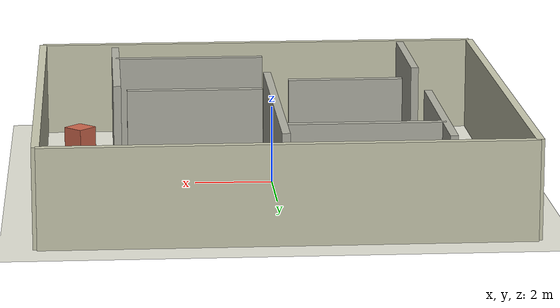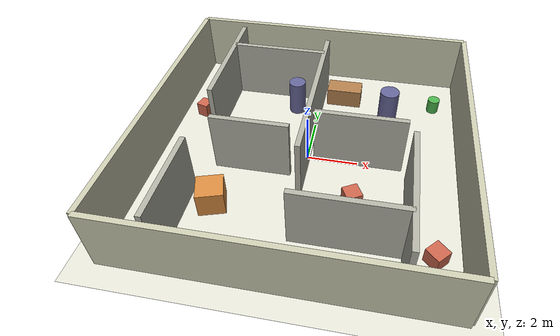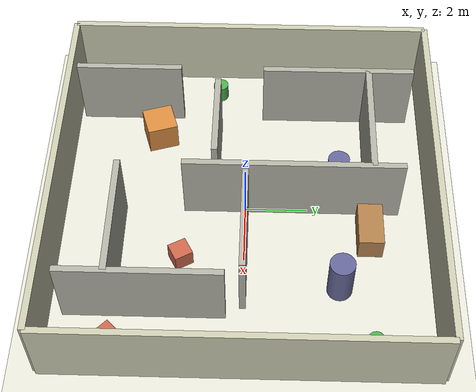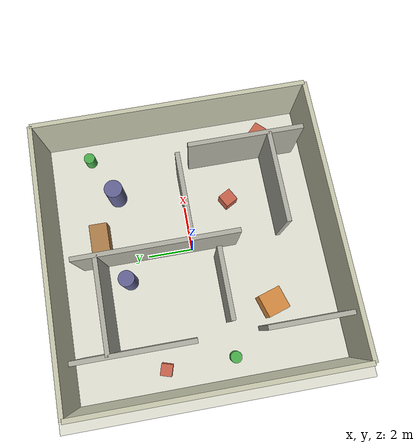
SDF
<?xml version="1.0" ?>
<sdf version="1.6">
  <world name="simple_room">

    <physics name="1ms" type="ode">
      <max_step_size>0.001</max_step_size>
      <real_time_update_rate>1000</real_time_update_rate>
      <real_time_factor>1.0</real_time_factor>
    </physics>

    <!-- Plugin cho Ignition Fortress -->
    <plugin filename="ignition-gazebo-physics-system"
            name="ignition::gazebo::systems::Physics"/>
    <plugin filename="ignition-gazebo-user-commands-system"
            name="ignition::gazebo::systems::UserCommands"/>
    <plugin filename="ignition-gazebo-scene-broadcaster-system"
            name="ignition::gazebo::systems::SceneBroadcaster"/>
    <plugin filename="ignition-gazebo-contact-system"
            name="ignition::gazebo::systems::Contact"/>
    <plugin filename="ignition-gazebo-sensors-system"
            name="ignition::gazebo::systems::Sensors">
      <render_engine>ogre2</render_engine>
    </plugin>

    <!-- Ánh sáng chính -->
    <light type="directional" name="sun">
      <cast_shadows>true</cast_shadows>
      <pose>0 0 10 0 0 0</pose>
      <diffuse>0.8 0.8 0.8 1</diffuse>
      <specular>0.2 0.2 0.2 1</specular>
      <attenuation>
        <range>1000</range>
        <constant>0.9</constant>
        <linear>0.01</linear>
        <quadratic>0.001</quadratic>
      </attenuation>
      <direction>-0.5 0.1 -0.9</direction>
    </light>

    <!-- Ánh sáng phụ -->
    <light type="point" name="ceiling_light_1">
      <pose>-3 3 3 0 0 0</pose>
      <diffuse>0.9 0.9 0.9 1</diffuse>
      <specular>0.5 0.5 0.5 1</specular>
      <attenuation>
        <range>20</range>
        <constant>0.5</constant>
        <linear>0.01</linear>
        <quadratic>0.001</quadratic>
      </attenuation>
    </light>

    <light type="point" name="ceiling_light_2">
      <pose>3 -3 3 0 0 0</pose>
      <diffuse>0.9 0.9 0.9 1</diffuse>
      <specular>0.5 0.5 0.5 1</specular>
      <attenuation>
        <range>20</range>
        <constant>0.5</constant>
        <linear>0.01</linear>
        <quadratic>0.001</quadratic>
      </attenuation>
    </light>

        <!-- Nền nhà -->
    <model name="ground_plane">
      <static>true</static>
      <link name="link">
        <collision name="collision">
          <geometry>
            <plane>
              <normal>0 0 1</normal>
            </plane>
          </geometry>
          <surface>
            <friction>
              <ode>
                <mu>100</mu>
                <mu2>100</mu2>
              </ode>
            </friction>
          </surface>
        </collision>
        <visual name="visual">
          <geometry>
            <plane>
              <normal>0 0 1</normal>
              <size>100 100</size>
            </plane>
          </geometry>
          <material>
            <ambient>0.85 0.85 0.8 1</ambient>
            <diffuse>0.9 0.9 0.85 1</diffuse>
            <specular>0.1 0.1 0.1 1</specular>
          </material>
        </visual>
      </link>
    </model>

    <!-- ============ TƯỜNG NGOÀI PHÒNG ============ -->

    <!-- Tường trên -->
    <model name="outer_wall_top">
      <pose>0 6 1.25 0 0 0</pose>
      <static>true</static>
      <link name="link">
        <collision name="collision">
          <geometry>
            <box>
              <size>12 0.2 2.5</size>
            </box>
          </geometry>
        </collision>
        <visual name="visual">
          <geometry>
            <box>
              <size>12 0.2 2.5</size>
            </box>
          </geometry>
          <material>
            <ambient>0.7 0.7 0.6 1</ambient>
            <diffuse>0.8 0.8 0.7 1</diffuse>
          </material>
        </visual>
      </link>
    </model>

    <!-- Tường dưới -->
    <model name="outer_wall_bottom">
      <pose>0 -6 1.25 0 0 0</pose>
      <static>true</static>
      <link name="link">
        <collision name="collision">
          <geometry>
            <box>
              <size>12 0.2 2.5</size>
            </box>
          </geometry>
        </collision>
        <visual name="visual">
          <geometry>
            <box>
              <size>12 0.2 2.5</size>
            </box>
          </geometry>
          <material>
            <ambient>0.7 0.7 0.6 1</ambient>
            <diffuse>0.8 0.8 0.7 1</diffuse>
          </material>
        </visual>
      </link>
    </model>

    <!-- Tường trái -->
    <model name="outer_wall_left">
      <pose>-6 0 1.25 0 0 0</pose>
      <static>true</static>
      <link name="link">
        <collision name="collision">
          <geometry>
            <box>
              <size>0.2 12 2.5</size>
            </box>
          </geometry>
        </collision>
        <visual name="visual">
          <geometry>
            <box>
              <size>0.2 12 2.5</size>
            </box>
          </geometry>
          <material>
            <ambient>0.7 0.7 0.6 1</ambient>
            <diffuse>0.8 0.8 0.7 1</diffuse>
          </material>
        </visual>
      </link>
    </model>

    <!-- Tường phải -->
    <model name="outer_wall_right">
      <pose>6 0 1.25 0 0 0</pose>
      <static>true</static>
      <link name="link">
        <collision name="collision">
          <geometry>
            <box>
              <size>0.2 12 2.5</size>
            </box>
          </geometry>
        </collision>
        <visual name="visual">
          <geometry>
            <box>
              <size>0.2 12 2.5</size>
            </box>
          </geometry>
          <material>
            <ambient>0.7 0.7 0.6 1</ambient>
            <diffuse>0.8 0.8 0.7 1</diffuse>
          </material>
        </visual>
      </link>
    </model>

    <!-- ============ CHƯỚNG NGẠI VẬT TẠO MÊ CUNG ============ -->

    <!-- Tường ngăn dọc 1 - Bên trái trên -->
    <model name="maze_wall_1">
      <pose>-4 3 1.25 0 0 0</pose>
      <static>true</static>
      <link name="link">
        <collision name="collision">
          <geometry>
            <box>
              <size>0.2 5 2.5</size>
            </box>
          </geometry>
        </collision>
        <visual name="visual">
          <geometry>
            <box>
              <size>0.2 5 2.5</size>
            </box>
          </geometry>
          <material>
            <ambient>0.6 0.6 0.55 1</ambient>
            <diffuse>0.7 0.7 0.65 1</diffuse>
          </material>
        </visual>
      </link>
    </model>

    <!-- Tường ngăn dọc 2 - Giữa -->
    <model name="maze_wall_2">
      <pose>0 1.5 1.25 0 0 0</pose>
      <static>true</static>
      <link name="link">
        <collision name="collision">
          <geometry>
            <box>
              <size>0.2 7 2.5</size>
            </box>
          </geometry>
        </collision>
        <visual name="visual">
          <geometry>
            <box>
              <size>0.2 7 2.5</size>
            </box>
          </geometry>
          <material>
            <ambient>0.6 0.6 0.55 1</ambient>
            <diffuse>0.7 0.7 0.65 1</diffuse>
          </material>
        </visual>
      </link>
    </model>

    <!-- Tường ngăn dọc 3 - Bên phải dưới -->
    <model name="maze_wall_3">
      <pose>4 -3 1.25 0 0 0</pose>
      <static>true</static>
      <link name="link">
        <collision name="collision">
          <geometry>
            <box>
              <size>0.2 5 2.5</size>
            </box>
          </geometry>
        </collision>
        <visual name="visual">
          <geometry>
            <box>
              <size>0.2 5 2.5</size>
            </box>
          </geometry>
          <material>
            <ambient>0.6 0.6 0.55 1</ambient>
            <diffuse>0.7 0.7 0.65 1</diffuse>
          </material>
        </visual>
      </link>
    </model>

    <!-- Tường ngang 1 - Trên trái -->
    <model name="maze_wall_4">
      <pose>-2 4 1.25 0 0 0</pose>
      <static>true</static>
      <link name="link">
        <collision name="collision">
          <geometry>
            <box>
              <size>4 0.2 2.5</size>
            </box>
          </geometry>
        </collision>
        <visual name="visual">
          <geometry>
            <box>
              <size>4 0.2 2.5</size>
            </box>
          </geometry>
          <material>
            <ambient>0.6 0.6 0.55 1</ambient>
            <diffuse>0.7 0.7 0.65 1</diffuse>
          </material>
        </visual>
      </link>
    </model>

    <!-- Tường ngang 2 - Giữa -->
    <model name="maze_wall_5">
      <pose>2 0 1.25 0 0 0</pose>
      <static>true</static>
      <link name="link">
        <collision name="collision">
          <geometry>
            <box>
              <size>3.5 0.2 2.5</size>
            </box>
          </geometry>
        </collision>
        <visual name="visual">
          <geometry>
            <box>
              <size>3.5 0.2 2.5</size>
            </box>
          </geometry>
          <material>
            <ambient>0.6 0.6 0.55 1</ambient>
            <diffuse>0.7 0.7 0.65 1</diffuse>
          </material>
        </visual>
      </link>
    </model>

    <!-- Tường ngang 3 - Dưới phải -->
    <model name="maze_wall_6">
      <pose>2 -4 1.25 0 0 0</pose>
      <static>true</static>
      <link name="link">
        <collision name="collision">
          <geometry>
            <box>
              <size>4 0.2 2.5</size>
            </box>
          </geometry>
        </collision>
        <visual name="visual">
          <geometry>
            <box>
              <size>4 0.2 2.5</size>
            </box>
          </geometry>
          <material>
            <ambient>0.6 0.6 0.55 1</ambient>
            <diffuse>0.7 0.7 0.65 1</diffuse>
          </material>
        </visual>
      </link>
    </model>

    <!-- Tường ngắn tạo góc hẹp 1 -->
    <model name="maze_wall_7">
      <pose>-2 -1 1.25 0 0 0</pose>
      <static>true</static>
      <link name="link">
        <collision name="collision">
          <geometry>
            <box>
              <size>3 0.2 2.5</size>
            </box>
          </geometry>
        </collision>
        <visual name="visual">
          <geometry>
            <box>
              <size>3 0.2 2.5</size>
            </box>
          </geometry>
          <material>
            <ambient>0.6 0.6 0.55 1</ambient>
            <diffuse>0.7 0.7 0.65 1</diffuse>
          </material>
        </visual>
      </link>
    </model>

    <!-- Tường ngắn tạo góc hẹp 2 -->
    <model name="maze_wall_8">
      <pose>-4 -4 1.25 0 0 0</pose>
      <static>true</static>
      <link name="link">
        <collision name="collision">
          <geometry>
            <box>
              <size>0.2 3.5 2.5</size>
            </box>
          </geometry>
        </collision>
        <visual name="visual">
          <geometry>
            <box>
              <size>0.2 3.5 2.5</size>
            </box>
          </geometry>
          <material>
            <ambient>0.6 0.6 0.55 1</ambient>
            <diffuse>0.7 0.7 0.65 1</diffuse>
          </material>
        </visual>
      </link>
    </model>

    <!-- ============ CHƯỚNG NGẠI VẬT NHỎ ============ -->

    <!-- Hộp lớn -->
    <model name="large_box_1">
      <pose>-3 -3 0.5 0 0 0.3</pose>
      <static>true</static>
      <link name="link">
        <collision name="collision">
          <geometry>
            <box>
              <size>1 1 1</size>
            </box>
          </geometry>
        </collision>
        <visual name="visual">
          <geometry>
            <box>
              <size>1 1 1</size>
            </box>
          </geometry>
          <material>
            <ambient>0.8 0.5 0.2 1</ambient>
            <diffuse>0.85 0.55 0.25 1</diffuse>
          </material>
        </visual>
      </link>
    </model>

    <!-- Trụ tròn 1 -->
    <model name="cylinder_1">
      <pose>3 3 0.75 0 0 0</pose>
      <static>true</static>
      <link name="link">
        <collision name="collision">
          <geometry>
            <cylinder>
              <radius>0.4</radius>
              <length>1.5</length>
            </cylinder>
          </geometry>
        </collision>
        <visual name="visual">
          <geometry>
            <cylinder>
              <radius>0.4</radius>
              <length>1.5</length>
            </cylinder>
          </geometry>
          <material>
            <ambient>0.3 0.3 0.5 1</ambient>
            <diffuse>0.4 0.4 0.6 1</diffuse>
          </material>
        </visual>
      </link>
    </model>

    <!-- Trụ tròn 2 -->
    <model name="cylinder_2">
      <pose>-1 3 0.75 0 0 0</pose>
      <static>true</static>
      <link name="link">
        <collision name="collision">
          <geometry>
            <cylinder>
              <radius>0.35</radius>
              <length>1.5</length>
            </cylinder>
          </geometry>
        </collision>
        <visual name="visual">
          <geometry>
            <cylinder>
              <radius>0.35</radius>
              <length>1.5</length>
            </cylinder>
          </geometry>
          <material>
            <ambient>0.3 0.3 0.5 1</ambient>
            <diffuse>0.4 0.4 0.6 1</diffuse>
          </material>
        </visual>
      </link>
    </model>

    <!-- Hộp nhỏ 1 -->
    <model name="small_box_1">
      <pose>2 -2 0.3 0 0 0.5</pose>
      <static>true</static>
      <link name="link">
        <collision name="collision">
          <geometry>
            <box>
              <size>0.6 0.6 0.6</size>
            </box>
          </geometry>
        </collision>
        <visual name="visual">
          <geometry>
            <box>
              <size>0.6 0.6 0.6</size>
            </box>
          </geometry>
          <material>
            <ambient>0.7 0.3 0.2 1</ambient>
            <diffuse>0.8 0.4 0.3 1</diffuse>
          </material>
        </visual>
      </link>
    </model>

    <!-- Hộp nhỏ 2 -->
    <model name="small_box_2">
      <pose>-5 2 0.3 0 0 -0.3</pose>
      <static>true</static>
      <link name="link">
        <collision name="collision">
          <geometry>
            <box>
              <size>0.5 0.5 0.6</size>
            </box>
          </geometry>
        </collision>
        <visual name="visual">
          <geometry>
            <box>
              <size>0.5 0.5 0.6</size>
            </box>
          </geometry>
          <material>
            <ambient>0.7 0.3 0.2 1</ambient>
            <diffuse>0.8 0.4 0.3 1</diffuse>
          </material>
        </visual>
      </link>
    </model>

    <!-- Hộp nhỏ 3 -->
    <model name="small_box_3">
      <pose>5 -4 0.3 0 0 0.8</pose>
      <static>true</static>
      <link name="link">
        <collision name="collision">
          <geometry>
            <box>
              <size>0.6 0.6 0.6</size>
            </box>
          </geometry>
        </collision>
        <visual name="visual">
          <geometry>
            <box>
              <size>0.6 0.6 0.6</size>
            </box>
          </geometry>
          <material>
            <ambient>0.7 0.3 0.2 1</ambient>
            <diffuse>0.8 0.4 0.3 1</diffuse>
          </material>
        </visual>
      </link>
    </model>

    <!-- Chậu cây trang trí -->
    <model name="plant_1">
      <pose>-5 -1 0.3 0 0 0</pose>
      <static>true</static>
      <link name="link">
        <collision name="collision">
          <geometry>
            <cylinder>
              <radius>0.25</radius>
              <length>0.6</length>
            </cylinder>
          </geometry>
        </collision>
        <visual name="visual">
          <geometry>
            <cylinder>
              <radius>0.25</radius>
              <length>0.6</length>
            </cylinder>
          </geometry>
          <material>
            <ambient>0.2 0.6 0.2 1</ambient>
            <diffuse>0.3 0.7 0.3 1</diffuse>
          </material>
        </visual>
      </link>
    </model>

    <model name="plant_2">
      <pose>5 4 0.3 0 0 0</pose>
      <static>true</static>
      <link name="link">
        <collision name="collision">
          <geometry>
            <cylinder>
              <radius>0.25</radius>
              <length>0.6</length>
            </cylinder>
          </geometry>
        </collision>
        <visual name="visual">
          <geometry>
            <cylinder>
              <radius>0.25</radius>
              <length>0.6</length>
            </cylinder>
          </geometry>
          <material>
            <ambient>0.2 0.6 0.2 1</ambient>
            <diffuse>0.3 0.7 0.3 1</diffuse>
          </material>
        </visual>
      </link>
    </model>

    <!-- Bàn -->
    <model name="table_obstacle">
      <pose>1 4 0.4 0 0 0</pose>
      <static>true</static>
      <link name="link">
        <collision name="collision">
          <geometry>
            <box>
              <size>1.5 0.8 0.8</size>
            </box>
          </geometry>
        </collision>
        <visual name="visual">
          <geometry>
            <box>
              <size>1.5 0.8 0.8</size>
            </box>
          </geometry>
          <material>
            <ambient>0.6 0.4 0.2 1</ambient>
            <diffuse>0.7 0.5 0.3 1</diffuse>
          </material>
        </visual>
      </link>
    </model>

  </world>
</sdf>
